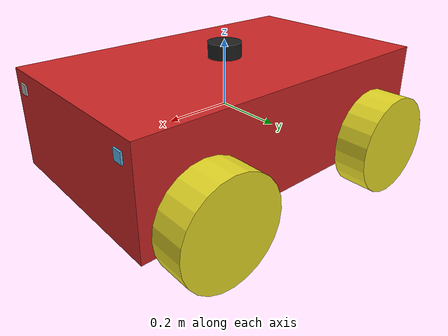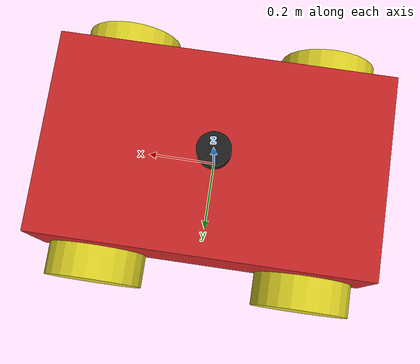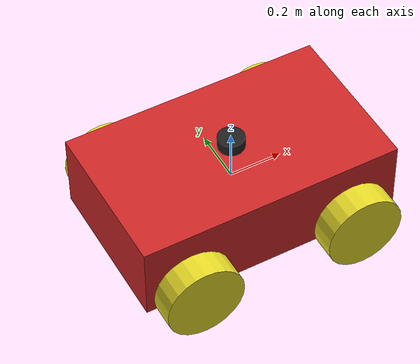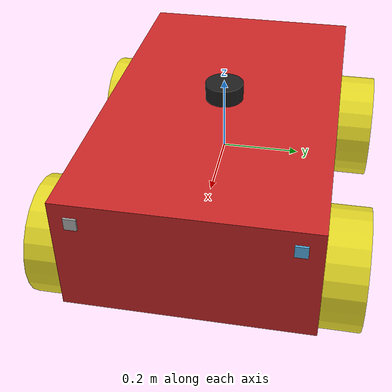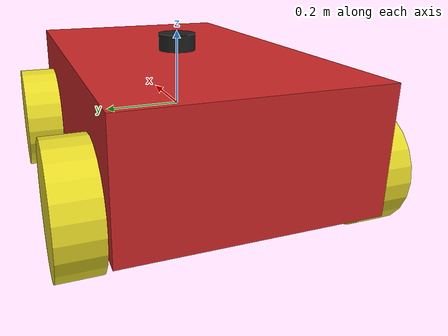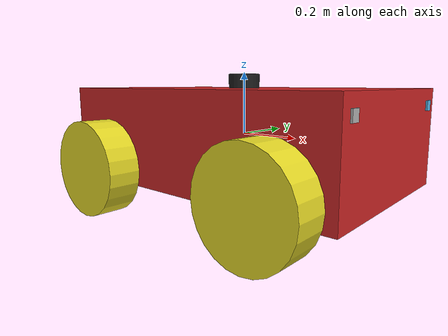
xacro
<?xml version="1.0"?>
<robot name="differential_drive_robot" xmlns:xacro="http://www.ros.org/wiki/xacro">

<!-- Body dimensions -->
<xacro:property name="body_link_x_dim" value="1"/>
<xacro:property name="body_link_y_dim" value="0.6"/>
<xacro:property name="body_link_z_dim" value="0.3"/>

<!-- Wheels dimensions -->
<xacro:property name="wheel_link_radius" value="0.15"/>
<xacro:property name="wheel_link_length" value="0.1"/>
<xacro:property name="wheel_link_z_location" value="0.1"/>

<!--MAterial density -->
<xacro:property name="body_density" value="2710.0"/>
<xacro:property name="wheel_density" value="2710.0"/>

<!--pi constant -->
<xacro:property name="pi_constant" value="3.14159265"/>

<!--Robot body and wheel mass -->
<xacro:property name="body_mass" value="${body_density*body_link_x_dim*body_link_y_dim*body_link_z_dim}"/>
<xacro:property name="wheel_mass" value="${wheel_density*pi_constant*wheel_link_radius*wheel_link_radius*wheel_link_length}"/>

<!-- Moments of inertia of the wheel -->
<xacro:property name="Iz_wheel" value= "${0.5*wheel_link_radius*wheel_link_radius}"/>
<xacro:property name="I_wheel" value="${(1.0/12.0)*wheel_mass*(3.0*wheel_link_radius*wheel_link_radius+wheel_link_length*wheel_link_length)}" />

<!-- this macro defines the complete inertial section of the wheel -->
<xacro:macro name="inertia_wheel">
	<inertial>
	<origin rpy="0 0 0" xyz="0 0 0" />
	<mass value = "${wheel_mass}" />
	<inertia ixx="${I_wheel}" ixy="0.0" ixz="0.0" iyy="${I_wheel}" iyz="0" izz="${Iz_wheel}" />
	</inertial>
</xacro:macro>

<!-- plugins mass attributes for later use -->
<xacro:property name="camera_mass" value="0.1"/>
<xacro:property name="lidar_mass" value="1e-5"/>
<xacro:property name="imu_mass" value="1e-7"/>

<!-- include the file that defines extra gazebo opetions and motion control driver -->
<xacro:include filename="$(find rover_bot)/model/robot.gazebo" />

<!-- Remove this dummy part -->
<link name="dummy"/>
<joint name="dummy_joint" type="fixed">
  <parent link="dummy"/>
  <child link="body_link"/>
</joint>

<!-- BODY link -->

<link name="body_link">
	<visual>
		<geometry>
			<box size = "${body_link_x_dim} ${body_link_y_dim} ${body_link_z_dim}" />
		</geometry>
	<origin rpy="0 0 0" xyz="0 0 0" />
	</visual>

	<collision>
		<geometry>
			<box size = "${body_link_x_dim} ${body_link_y_dim} ${body_link_z_dim}" />
		</geometry>
		<origin rpy="0 0 0" xyz="0 0 0" />
	</collision>

	<inertial>
		<origin rpy ="0 0 0" xyz = "0 0 0" />
		<mass value= "${body_mass}" />
	<inertia
	ixx="${(1.0/12.0)*body_mass*(body_link_y_dim*body_link_y_dim+body_link_z_dim*body_link_z_dim)}"
	ixy="0" ixz="0" iyy="${(1.0/12.0)*body_mass*(body_link_x_dim*body_link_x_dim+body_link_z_dim*body_link_z_dim)}"
	iyz="0" izz="${(1.0/12.0)*body_mass*(body_link_y_dim*body_link_y_dim+body_link_x_dim*body_link_x_dim)}" />

	</inertial>
</link>

<!--right back wheel of robot -->

 <joint name="wheel1_joint" type="continuous">
 	<parent link="body_link" />
 	<child link="wheel1_link" />
 	<origin xyz="${-body_link_x_dim/2+1.2*wheel_link_radius} ${-body_link_y_dim/2-wheel_link_length/2} ${-wheel_link_z_location}" rpy="0 0 0" />
 	<axis xyz="0 1 0" />
 	<limit effort="1000" velocity="1000" />
 	<dynamics damping="5.0" friction="5.0"/>

 </joint>

 <link name="wheel1_link">
 	<visual>
 		<origin rpy="1.570795 0 0" xyz="0 0 0" />
 		<geometry>
 			<cylinder length="${wheel_link_length}" radius="${wheel_link_radius}" />
 		</geometry>
 	</visual>

 	<collision>
 		<origin rpy="1.570795 0 0" xyz="0 0 0" />
 		<geometry>
 			<cylinder length="${wheel_link_length}" radius="${wheel_link_radius}" />
 		</geometry>
 	</collision>

 	<xacro:inertia_wheel />
 </link>

<!-- back left wheel -->

 <joint name="wheel2_joint" type="continuous">
 	<parent link="body_link" />
 	<child link="wheel2_link" />
 	<origin xyz="${-body_link_x_dim/2+1.2*wheel_link_radius} ${body_link_y_dim/2+wheel_link_length/2} ${-wheel_link_z_location}" rpy="0 0 0" />
 	<axis xyz="0 1 0" />
 	<limit effort="1000" velocity="1000" />
 	<dynamics damping="5.0" friction="5.0"/>

 </joint>

 <link name="wheel2_link">
 	<visual>
 		<origin rpy="1.570795 0 0" xyz="0 0 0" />
 		<geometry>
 			<cylinder length="${wheel_link_length}" radius="${wheel_link_radius}" />
 		</geometry>
 	</visual>

 	<collision>
 		<origin rpy="1.570795 0 0" xyz="0 0 0" />
 		<geometry>
 			<cylinder length="${wheel_link_length}" radius="${wheel_link_radius}" />
 		</geometry>
 	</collision>

 	<xacro:inertia_wheel />
 </link>

<!-- front right wheel -->

 <joint name="wheel3_joint" type="continuous">
 	<parent link="body_link" />
 	<child link="wheel3_link" />
 	<origin xyz="${body_link_x_dim/2-1.2*wheel_link_radius} ${-body_link_y_dim/2-wheel_link_length/2} ${-wheel_link_z_location}" rpy="0 0 0" />
 	<axis xyz="0 1 0" />
 	<limit effort="1000" velocity="1000" />
 	<dynamics damping="5.0" friction="5.0"/>

 </joint>

 <link name="wheel3_link">
 	<visual>
 		<origin rpy="1.570795 0 0" xyz="0 0 0" />
 		<geometry>
 			<cylinder length="${wheel_link_length}" radius="${wheel_link_radius}" />
 		</geometry>
 	</visual>

 	<collision>
 		<origin rpy="1.570795 0 0" xyz="0 0 0" />
 		<geometry>
 			<cylinder length="${wheel_link_length}" radius="${wheel_link_radius}" />
 		</geometry>
 	</collision>

 	<xacro:inertia_wheel />
 </link>

<!-- front left wheel -->

 <joint name="wheel4_joint" type="continuous">
 	<parent link="body_link" />
 	<child link="wheel4_link" />
 	<origin xyz="${body_link_x_dim/2-1.2*wheel_link_radius} ${body_link_y_dim/2+wheel_link_length/2} ${-wheel_link_z_location}" rpy="0 0 0" />
 	<axis xyz="0 1 0" />
 	<limit effort="1000" velocity="1000" />
 	<dynamics damping="5.0" friction="5.0"/>

 </joint>

 <link name="wheel4_link">
 	<visual>
 		<origin rpy="1.570795 0 0" xyz="0 0 0" />
 		<geometry>
 			<cylinder length="${wheel_link_length}" radius="${wheel_link_radius}" />
 		</geometry>
 	</visual>

 	<collision>
 		<origin rpy="1.570795 0 0" xyz="0 0 0" />
 		<geometry>
 			<cylinder length="${wheel_link_length}" radius="${wheel_link_radius}" />
 		</geometry>
 	</collision>

 	<xacro:inertia_wheel />
 </link>

<!-- lidar -->
<joint name="lidar_joint" type="fixed">
  <parent link="body_link"/>
  <child link="lidar_link"/>
  <origin xyz="0 0 0.17" rpy="0 0 0"/>
</joint>

<link name="lidar_link">
  <visual>
    <origin xyz="0 0 0" rpy="0 0 0"/>
    <geometry>
      <cylinder length="0.05" radius="0.05"/>
    </geometry>

  </visual>

  <collision>
    <origin xyz="0 0 0" rpy="0 0 0"/>
    <geometry>
      <cylinder length="0.05" radius="0.05"/>
    </geometry>
  </collision>

  <inertial>
    <origin xyz="0 0 0" rpy="0 0 0"/>
    <mass value="${lidar_mass}"/>
    <inertia ixx="1e-6" ixy="0" ixz="0" iyy="1e-6" iyz="0" izz="1e-6"/>
  </inertial>
</link>

	<joint name="camera_joint" type="fixed">
        <parent link="body_link"/>
        <child link="camera_link"/>
        <origin xyz="0.5 -0.25 0.1" rpy="0 0 0" />
    </joint>

    <link name="camera_link">
        <visual>
            <geometry>
                <box size="0.010 0.03 0.03" />
            </geometry>
        </visual>
    </link>

    <joint name="camera_optical_joint" type="fixed">
        <parent link="camera_link"/>
        <child link="camera_link_optical"/>
        <origin xyz="0 0 0" rpy="-1.5707 0 -1.5707" />
	</joint>

    <link name="camera_link_optical"></link>

<!--2nd camera-->

	<joint name="camera2_joint" type="fixed">
        <parent link="body_link"/>
        <child link="camera2_link"/>
        <origin xyz="0.5 0.25 0.1" rpy="0 0 0" />
    </joint>

    <link name="camera2_link">
        <visual>
            <geometry>
                <box size="0.010 0.03 0.03" />
            </geometry>
        </visual>
    </link>

    <joint name="camera2_optical_joint" type="fixed">
        <parent link="camera2_link"/>
        <child link="camera2_link_optical"/>
        <origin xyz="0 0 0" rpy="-1.5707 0 -1.5707" />
	</joint>

    <link name="camera2_link_optical"></link>

	<!-- Left camera frame -->

	<!-- Right camera frame (optional for TF or visuals) -->

</robot>
